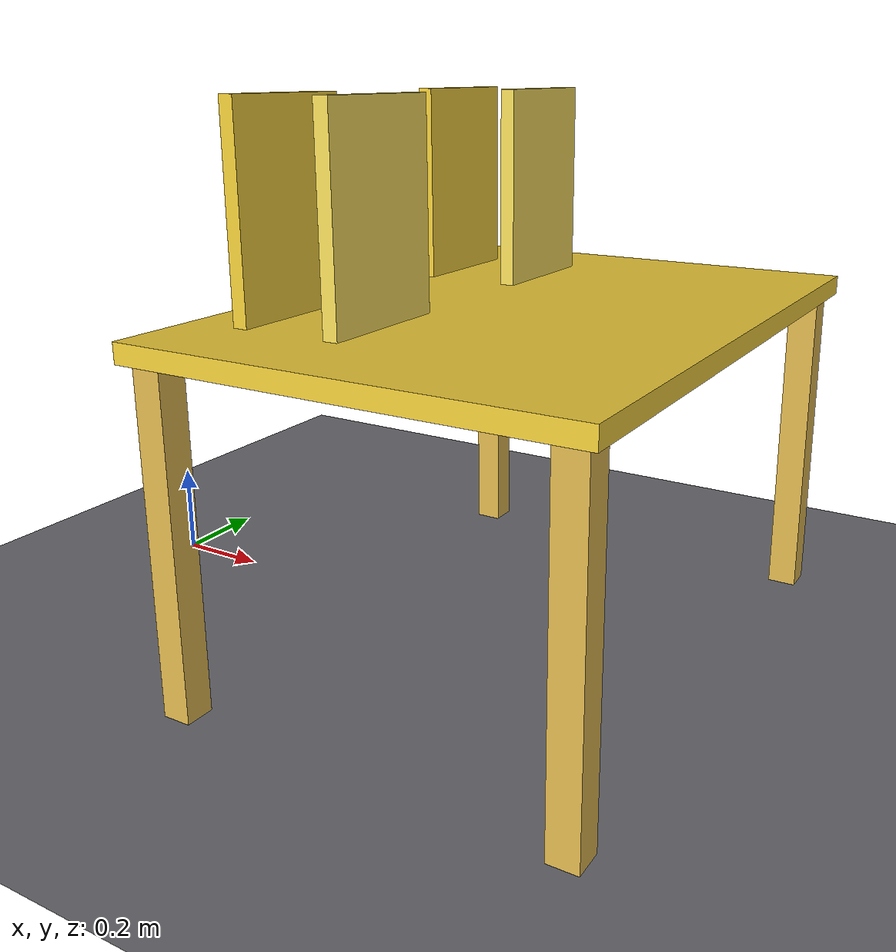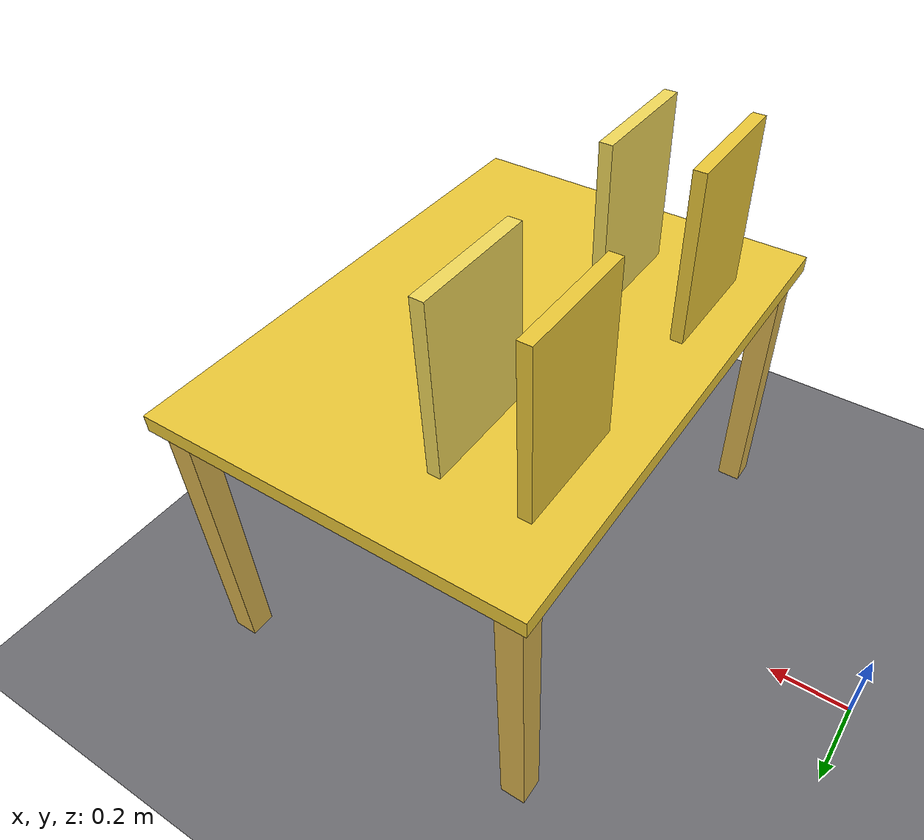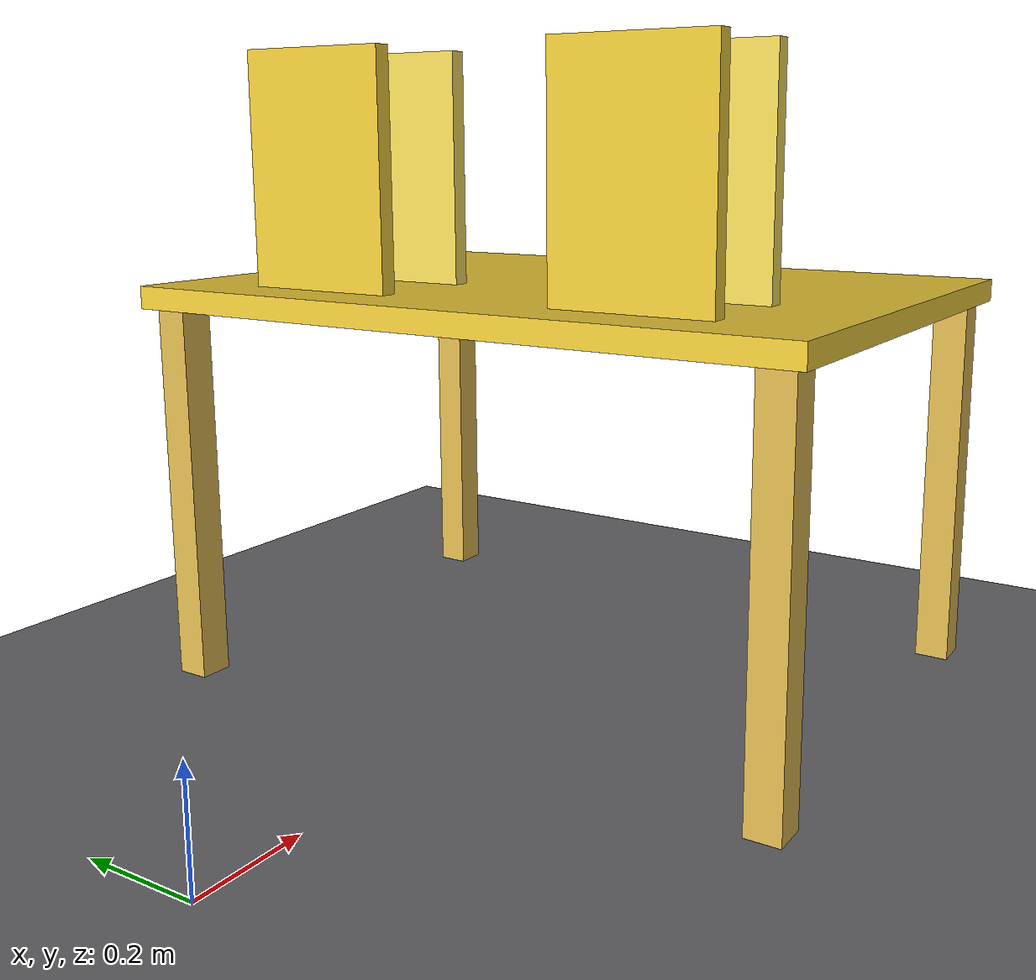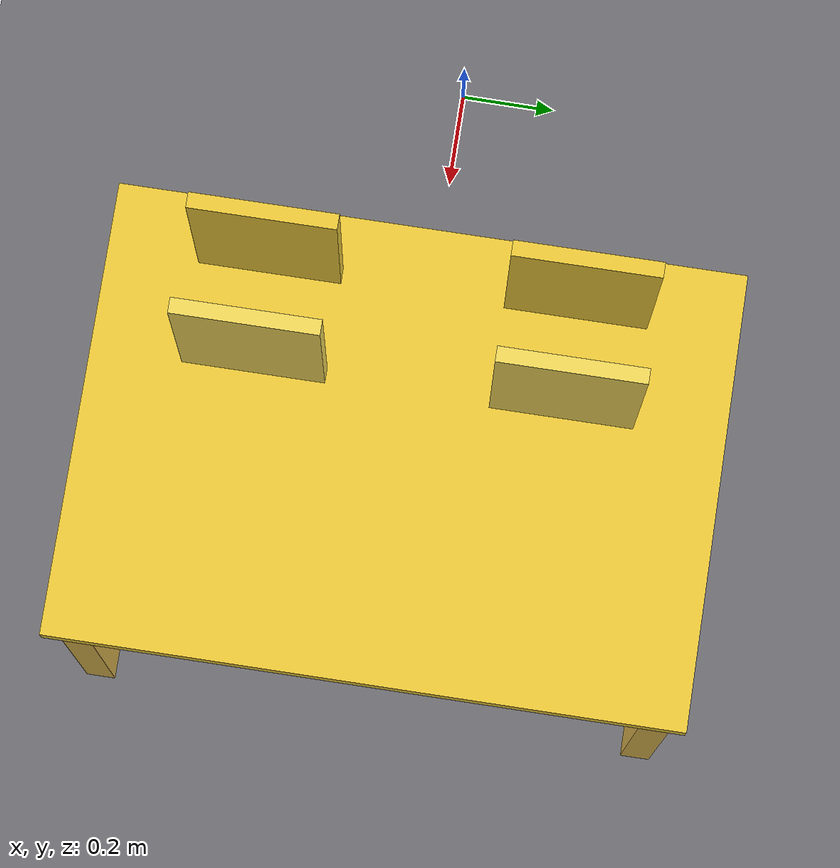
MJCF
<mujoco model="panel_slalom">
  <compiler angle="radian" autolimits="true" boundmass="0" balanceinertia="true"/>
  <option impratio="10" gravity="0 0 -9.8" integrator="implicitfast" cone="elliptic" jacobian="sparse" noslip_iterations="4">
    <flag multiccd="enable" contact="enable" warmstart="enable"/>
  </option>
  <size njmax="6000" nconmax="6000"/>
  <visual><global offwidth="1280" offheight="720"/><map znear="0.001"/>
    <headlight ambient="0.5 0.5 0.5" diffuse="0.65 0.65 0.65"/></visual>
  <asset>
    <texture name="tabletex" type="2d" builtin="flat" rgb1="0.91 0.76 0.65" width="32" height="32"/>
    <material name="tab" texture="tabletex" reflectance="0.05"/>
    <texture name="floortex" type="2d" builtin="checker" rgb1="0.46 0.46 0.48" rgb2="0.40 0.40 0.42" width="300" height="300"/>
    <material name="floormat" texture="floortex" texrepeat="10 10" reflectance="0.05"/>
  </asset>
  <default>
    <default class="panel">
      <geom contype="8" conaffinity="15" group="0" friction="0.9 0.9 0.001"
            solref="0.02 1" solimp="0.998 0.998 0.001" density="500" rgba="0.93 0.79 0.22 1"/>
    </default>
  </default>
  <worldbody>
    <light name="l_key" pos="0.4 0.5 2.6" dir="0 0 -1" diffuse="0.95 0.95 0.95"/>
    <light name="l_fill" pos="-0.6 -0.7 2.1" dir="0.3 0.3 -1" diffuse="0.5 0.5 0.5"/>
    <geom name="floor" type="plane" size="5 5 0.1" pos="0 0 0" material="floormat" contype="8" conaffinity="15"/>
    <geom name="table_top" class="panel" type="box" pos="0.95 0 0.70" size="0.45 0.62 0.02" material="tab"/>
    <geom name="tleg1" class="panel" type="box" pos="0.55 0.57 0.34" size="0.03 0.03 0.34" rgba="0.85 0.7 0.3 1"/>
    <geom name="tleg2" class="panel" type="box" pos="0.55 -0.57 0.34" size="0.03 0.03 0.34" rgba="0.85 0.7 0.3 1"/>
    <geom name="tleg3" class="panel" type="box" pos="1.35 0.57 0.34" size="0.03 0.03 0.34" rgba="0.85 0.7 0.3 1"/>
    <geom name="tleg4" class="panel" type="box" pos="1.35 -0.57 0.34" size="0.03 0.03 0.34" rgba="0.85 0.7 0.3 1"/>
    <!-- two pairs of upright panels (mocap): gap 1 at entry, gap 2 deeper; offsets per episode -->
    <body name="p1l" mocap="true" pos="0.62 0.30 0.92"><geom name="p1l_g" class="panel" type="box" size="0.015 0.14 0.20"/></body>
    <body name="p1r" mocap="true" pos="0.62 -0.30 0.92"><geom name="p1r_g" class="panel" type="box" size="0.015 0.14 0.20"/></body>
    <body name="p2l" mocap="true" pos="0.82 0.30 0.92"><geom name="p2l_g" class="panel" type="box" size="0.015 0.14 0.20" rgba="0.95 0.85 0.35 1"/></body>
    <body name="p2r" mocap="true" pos="0.82 -0.30 0.92"><geom name="p2r_g" class="panel" type="box" size="0.015 0.14 0.20" rgba="0.95 0.85 0.35 1"/></body>
  </worldbody>
</mujoco>
